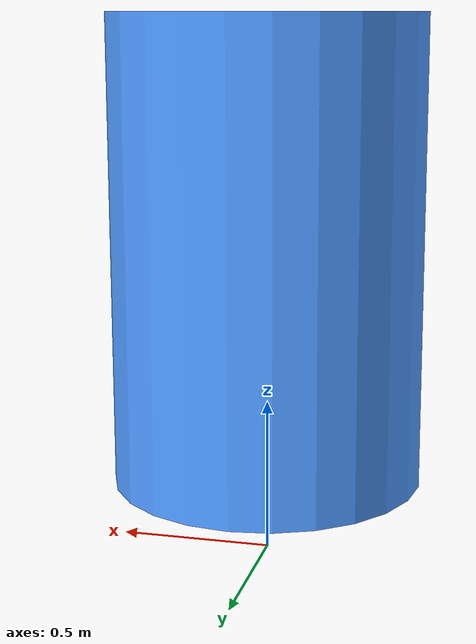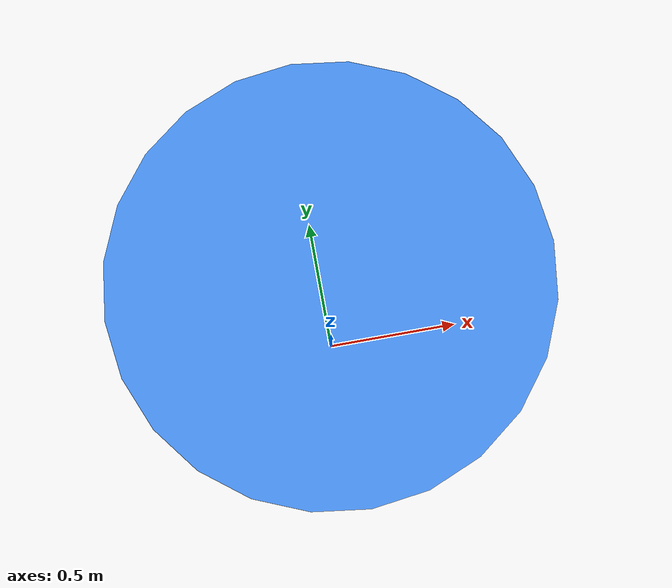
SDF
<?xml version="1.6"?>
<sdf version="1.6">
  <model name="transport_capsule">
    <pose>0 0 1 0 0 0</pose> <!-- Initial position (x y z roll pitch yaw) -->
    <static>false</static>

    <link name="body">
      <pose>0 0 0 0 0 0</pose>

      <collision name="collision">
        <geometry>
          <cylinder>
            <radius>0.5</radius>
            <length>1.5</length>
          </cylinder>
        </geometry>
      </collision>

      <visual name="visual">
        <geometry>
          <cylinder>
            <radius>0.5</radius>
            <length>1.5</length>
          </cylinder>
        </geometry>
        <material>
          <ambient>0.3 0.6 1.0 1</ambient>
          <diffuse>0.3 0.6 1.0 1</diffuse>
        </material>
      </visual>

      <inertial>
        <mass>10.0</mass>
        <inertia>
          <ixx>1</ixx>
          <iyy>1</iyy>
          <izz>1</izz>
        </inertia>
      </inertial>
    </link>
  </model>
</sdf>
